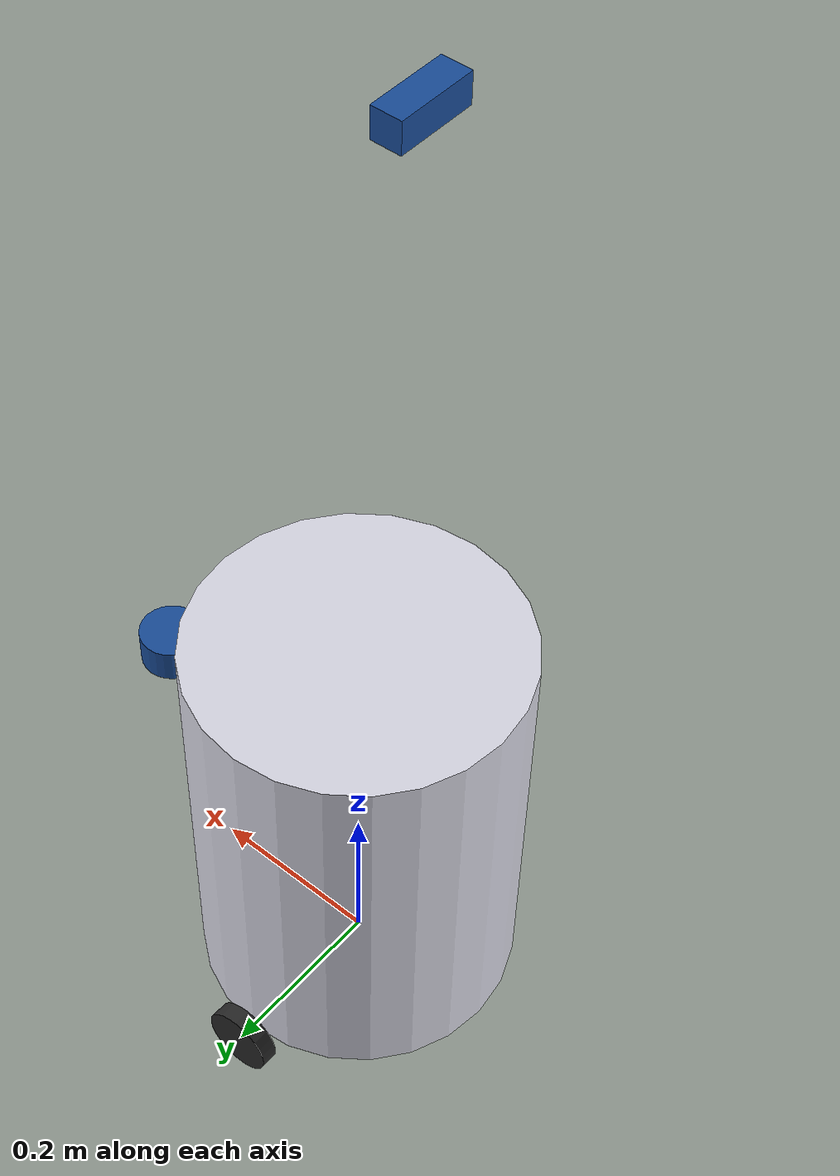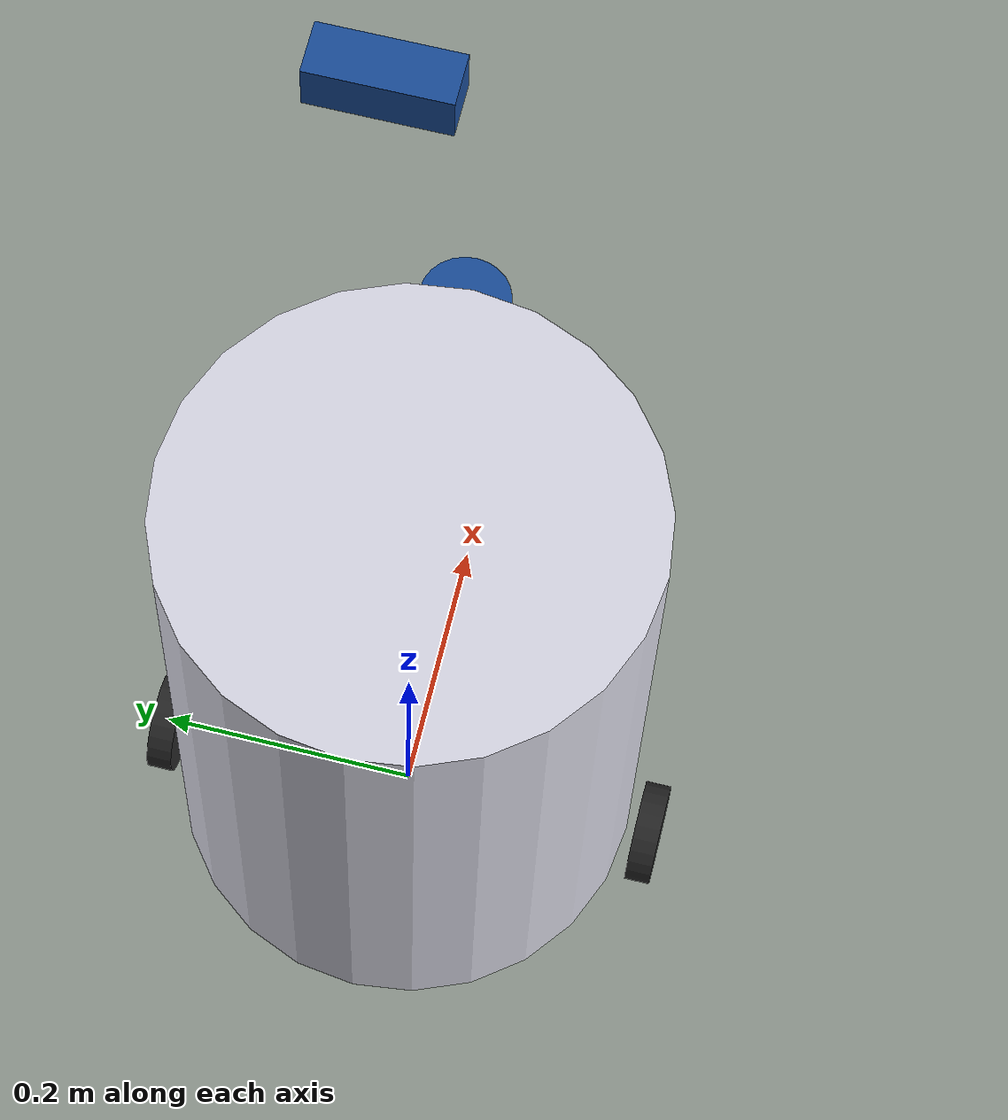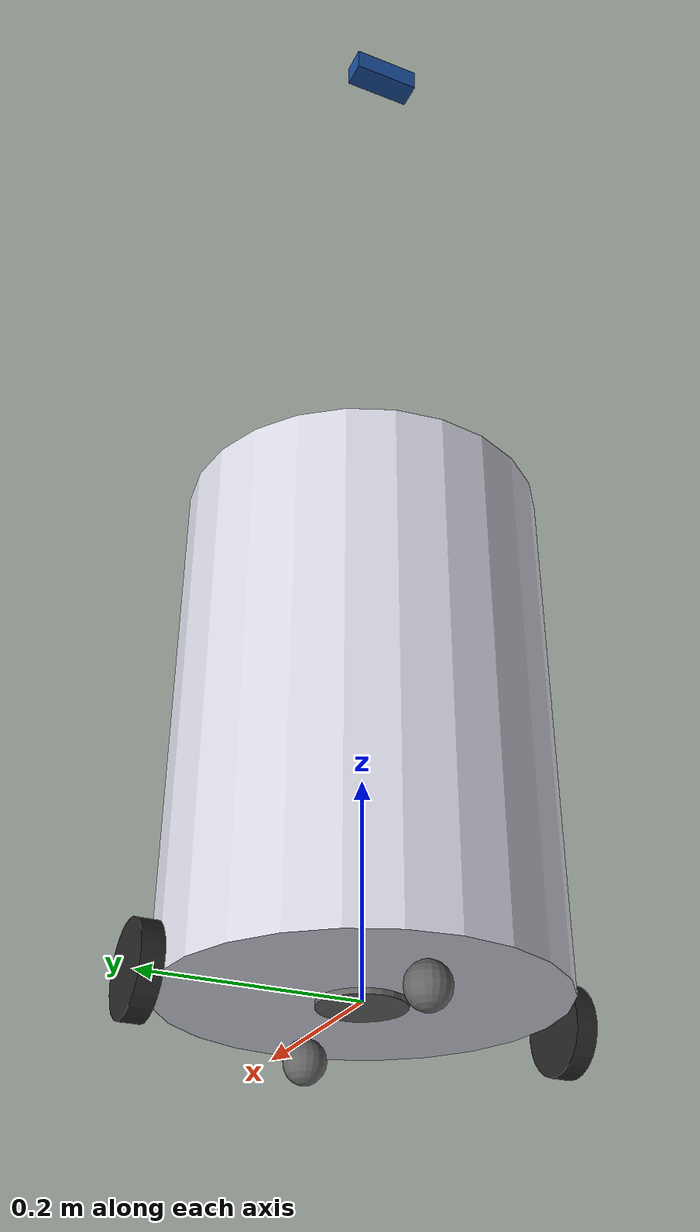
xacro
<?xml version="1.0"?>
<robot xmlns:xacro="http://www.ros.org/wiki/xacro" name="receptionist_robot">

  <!-- PROPERTIES & PARAMETERS (Can be easily tuned)                        -->

  <!-- Wheel specifications -->
  <!-- Wheel diameter: 0.065m (6.5cm), radius: 0.0325m -->
  <xacro:property name="wheel_radius" value="0.04" />
  <!-- Wheel width (thickness): 0.025m (2.5cm) -->
  <xacro:property name="wheel_width" value="0.02" />
  <!-- Wheelbase: 0.30m (30.0cm) separation between wheels along Y-axis -->
  <xacro:property name="wheelbase" value="0.395" />
  <!-- Wheel mass: 0.15kg -->
  <xacro:property name="wheel_mass" value="0.15" />

  <!-- Chassis specifications -->
  <!-- Cylindrical chassis representing a standard tall receptionist robot -->
  <xacro:property name="chassis_radius" value="0.18" />
  <xacro:property name="chassis_height" value="0.50" />
  <xacro:property name="chassis_mass" value="20.0" />

  <!-- Caster specifications -->
  <xacro:property name="caster_radius" value="0.02" />
  <xacro:property name="caster_offset_x" value="0.12" />
  <xacro:property name="caster_mass" value="0.2" />

  <!-- Lidar mount offsets -->
  <!-- Placed near the front edge of the robot and elevated on a mast or shelf -->
  <xacro:property name="lidar_offset_x" value="0.15" />
  <xacro:property name="lidar_offset_y" value="0.02" />
  <xacro:property name="lidar_offset_z" value="0.16" />
  <xacro:property name="lidar_mass" value="0.25" />

  <!-- MATERIALS (Colors for visualization in RViz)                         -->
  <material name="chassis_material">
    <color rgba="0.85 0.85 0.90 1.0" /> <!-- Premium Ice White -->
  </material>

  <material name="wheel_material">
    <color rgba="0.15 0.15 0.15 1.0" /> <!-- Sleek Dark Grey -->
  </material>

  <material name="caster_material">
    <color rgba="0.4 0.4 0.4 1.0" /> <!-- Matte Grey -->
  </material>

  <material name="lidar_material">
    <color rgba="0.1 0.3 0.6 1.0" /> <!-- Antigravity Deep Blue -->
  </material>

  <!-- MACROS (Inertial Helper Functions)                                   -->
  <xacro:macro name="cylinder_inertia" params="mass r h">
    <inertial>
      <mass value="${mass}" />
      <inertia ixx="${(1/12) * mass * (3*r*r + h*h)}" ixy="0.0" ixz="0.0"
               iyy="${(1/12) * mass * (3*r*r + h*h)}" iyz="0.0"
               izz="${(1/2) * mass * (r*r)}" />
    </inertial>
  </xacro:macro>

  <xacro:macro name="sphere_inertia" params="mass r">
    <inertial>
      <mass value="${mass}" />
      <inertia ixx="${(2/5) * mass * r*r}" ixy="0.0" ixz="0.0"
               iyy="${(2/5) * mass * r*r}" iyz="0.0"
               izz="${(2/5) * mass * r*r}" />
    </inertial>
  </xacro:macro>

  <!-- LINKS & JOINTS                                                       -->

  <!-- 1. base_footprint (Ground projection) -->
  <link name="base_footprint" />

  <!-- 2. base_link (Robot origin at center of the wheel axle) -->
  <link name="base_link">
    <!-- Visual hub for base_link -->
    <visual>
      <origin xyz="0 0 0" rpy="0 0 0" />
      <geometry>
        <cylinder radius="0.04" length="0.01" />
      </geometry>
      <material name="caster_material"/>
    </visual>
  </link>

  <joint name="base_footprint_joint" type="fixed">
    <parent link="base_link" />
    <child link="base_footprint" />
    <!-- Elevate base_link relative to base_footprint (so footprint is on ground) -->
    <origin xyz="0 0 -${wheel_radius}" rpy="0 0 0" />
  </joint>

  <!-- 3. Chassis (Main tall cylindrical body) -->
  <link name="chassis">
    <visual>
      <!-- Center visual half height up -->
      <origin xyz="0 0 ${chassis_height/2}" rpy="0 0 0" />
      <geometry>
        <cylinder radius="${chassis_radius}" length="${chassis_height}" />
      </geometry>
      <material name="chassis_material" />
    </visual>
    <collision>
      <origin xyz="0 0 ${chassis_height/2}" rpy="0 0 0" />
      <geometry>
        <cylinder radius="${chassis_radius}" length="${chassis_height}" />
      </geometry>
    </collision>
    <xacro:cylinder_inertia mass="${chassis_mass}" r="${chassis_radius}" h="${chassis_height}" />
  </link>

  <joint name="chassis_joint" type="fixed">
    <parent link="base_link" />
    <child link="chassis" />
    <origin xyz="0 0 0" rpy="0 0 0" />
  </joint>

  <!-- 4. Left Wheel -->
  <link name="left_wheel">
    <visual>
      <!-- Wheels are cylinders, which are oriented along the Z axis by default in ROS.
           We rotate the visual/collision shapes by 90 degrees around X to align with Y axis -->
      <origin xyz="0 0 0" rpy="${pi/2} 0 0" />
      <geometry>
        <cylinder radius="${wheel_radius}" length="${wheel_width}" />
      </geometry>
      <material name="wheel_material" />
    </visual>
    <collision>
      <origin xyz="0 0 0" rpy="${pi/2} 0 0" />
      <geometry>
        <cylinder radius="${wheel_radius}" length="${wheel_width}" />
      </geometry>
    </collision>
    <xacro:cylinder_inertia mass="${wheel_mass}" r="${wheel_radius}" h="${wheel_width}" />
  </link>

  <joint name="left_wheel_joint" type="fixed">
    <parent link="base_link" />
    <child link="left_wheel" />
    <!-- Positioned at wheelbase/2 along positive Y-axis -->
    <origin xyz="0 ${wheelbase/2} 0" rpy="0 0 0" />
  </joint>

  <!-- 5. Right Wheel -->
  <link name="right_wheel">
    <visual>
      <origin xyz="0 0 0" rpy="${pi/2} 0 0" />
      <geometry>
        <cylinder radius="${wheel_radius}" length="${wheel_width}" />
      </geometry>
      <material name="wheel_material" />
    </visual>
    <collision>
      <origin xyz="0 0 0" rpy="${pi/2} 0 0" />
      <geometry>
        <cylinder radius="${wheel_radius}" length="${wheel_width}" />
      </geometry>
    </collision>
    <xacro:cylinder_inertia mass="${wheel_mass}" r="${wheel_radius}" h="${wheel_width}" />
  </link>

  <joint name="right_wheel_joint" type="fixed">
    <parent link="base_link" />
    <child link="right_wheel" />
    <!-- Positioned at wheelbase/2 along negative Y-axis -->
    <origin xyz="0 -${wheelbase/2} 0" rpy="0 0 0" />
  </joint>

  <!-- 6. Front Caster Wheel -->
  <link name="front_caster">
    <visual>
      <origin xyz="0 0 0" rpy="0 0 0" />
      <geometry>
        <sphere radius="${caster_radius}" />
      </geometry>
      <material name="caster_material" />
    </visual>
    <collision>
      <origin xyz="0 0 0" rpy="0 0 0" />
      <geometry>
        <sphere radius="${caster_radius}" />
      </geometry>
    </collision>
    <xacro:sphere_inertia mass="${caster_mass}" r="${caster_radius}" />
  </link>

  <joint name="front_caster_joint" type="fixed">
    <parent link="base_link" />
    <child link="front_caster" />
    <!-- Offset forward and down so it meets ground height -->
    <origin xyz="${caster_offset_x} 0 ${-(wheel_radius - caster_radius)}" rpy="0 0 0" />
  </joint>

  <!-- 7. Back Caster Wheel -->
  <link name="back_caster">
    <visual>
      <origin xyz="0 0 0" rpy="0 0 0" />
      <geometry>
        <sphere radius="${caster_radius}" />
      </geometry>
      <material name="caster_material" />
    </visual>
    <collision>
      <origin xyz="0 0 0" rpy="0 0 0" />
      <geometry>
        <sphere radius="${caster_radius}" />
      </geometry>
    </collision>
    <xacro:sphere_inertia mass="${caster_mass}" r="${caster_radius}" />
  </link>

  <joint name="back_caster_joint" type="fixed">
    <parent link="base_link" />
    <child link="back_caster" />
    <!-- Offset backward and down so it meets ground height -->
    <origin xyz="-${caster_offset_x} 0 ${-(wheel_radius - caster_radius)}" rpy="0 0 0" />
  </joint>

  <!-- 8. Lidar Sensor (frame_id = laser) -->
  <link name="laser">
    <visual>
      <origin xyz="-0.1 0 0.17" rpy="0 0 0" />
      <geometry>
        <!-- Standard puck cylinder shape for RPLidar A1/A2 -->
        <cylinder radius="0.035" length="0.04" />
      </geometry>
      <material name="lidar_material" />
    </visual>
    <collision>
      <origin xyz="0 0 0" rpy="0 0 0" />
      <geometry>
        <cylinder radius="0.035" length="0.04" />
      </geometry>
    </collision>
    <xacro:cylinder_inertia mass="${lidar_mass}" r="0.035" h="0.04" />
  </link>

  <joint name="laser_joint" type="fixed">
    <parent link="base_link" />
    <child link="laser" />
    <!-- Reverted X direction: rotated 180 degrees (pi) around Z axis -->
    <origin xyz="${lidar_offset_x} ${lidar_offset_y} ${lidar_offset_z}" rpy="0 0 ${pi}" />
  </joint>

  <!-- 9. IMU Sensor (frame_id = imu_link) -->
  <link name="imu_link">
    <visual>
      <origin xyz="0.0 0.0 0.1" rpy="0 0 0" />
      <geometry>
        <box size="0.02 0.02 0.005" />
      </geometry>
      <material name="lidar_material" />
    </visual>
  </link>

  <joint name="imu_joint" type="fixed">
    <parent link="base_link" />
    <child link="imu_link" />
    <origin xyz="0.0 0.0 0.10" rpy="0 0 0" />
  </joint>

  <!-- 10. USB Camera (frame_id = camera_link & camera_color_optical_frame) -->
  <link name="camera_link">
    <visual>
      <origin xyz="0 0 0" rpy="0 0 0" />
      <geometry>
        <box size="0.03 0.08 0.03" />
      </geometry>
      <material name="lidar_material" />
    </visual>
  </link>

  <joint name="camera_joint" type="fixed">
    <parent link="base_link" />
    <child link="camera_link" />
    <origin xyz="-0.06 0.0 1.16" rpy="0 0 0" />
  </joint>

  <link name="camera_color_optical_frame" />

  <joint name="camera_optical_joint" type="fixed">
    <parent link="camera_link" />
    <child link="camera_color_optical_frame" />
    <origin xyz="0 0 0" rpy="${-pi/2} 0 ${-pi/2}" />
  </joint>

</robot>
